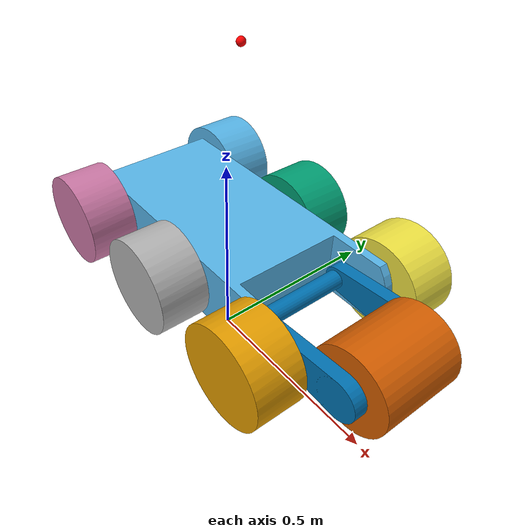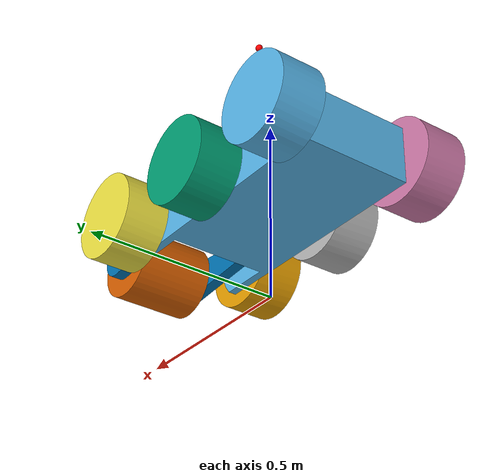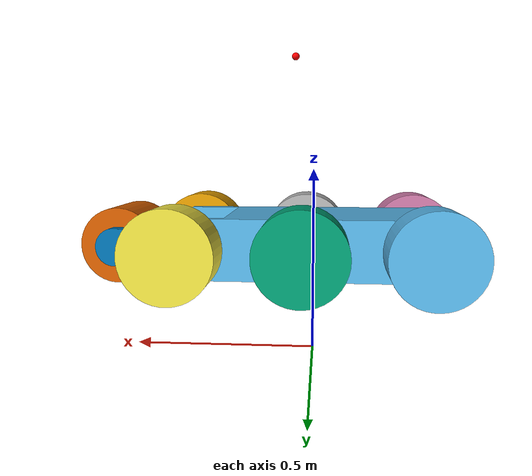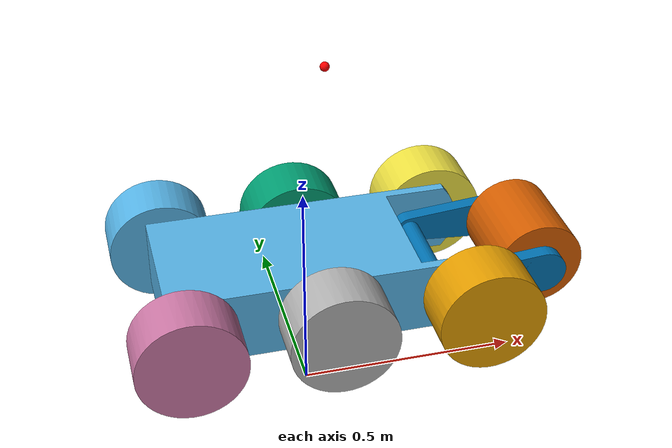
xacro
<?xml version="1.0"?>
<robot xmlns:xacro="http://ros.org/wiki/xacro" name="fire_robot">

  <!-- XACRO constants -->
  <xacro:arg name="include_inertial" default="true"/>
  <xacro:property name="mesh_dir" value="$(find fire_description)/meshes"/>

  <!-- Base footprint (dummy) -->
  <link name="base_footprint"/>
  <joint name="base_footprint_joint" type="fixed">
    <parent link="base_footprint"/>
    <child link="base_link"/>
    <origin xyz="0 0 0.3" rpy="0 0 0"/>
  </joint>

  <!-- base_link -->
  <link name="base_link">
    <inertial>
      <origin xyz="0 0 0" rpy="0 0 0"/>
      <mass value="6.0"/>
      <inertia ixx="0.02" ixy="0" ixz="0" iyy="0.02" iyz="0" izz="0.02"/>
    </inertial>
    <visual>
      <origin xyz="0 0 0" rpy="0 0 0"/>
      <geometry>
        <mesh filename="file://${mesh_dir}/base_link.obj" scale="0.01 0.01 0.01"/>
      </geometry>
    </visual>
    <collision>
      <origin xyz="0 0 0" rpy="0 0 0"/>
      <geometry>
        <mesh filename="file://${mesh_dir}/base_link.obj" scale="0.01 0.01 0.01"/>
      </geometry>
    </collision>
  </link>

  <!-- IMU frame -->
  <link name="imu_link"/>
  <joint name="imu_joint" type="fixed">
    <parent link="base_link"/>
    <child link="imu_link"/>
    <origin xyz="-0.10 0.0 0.0" rpy="0 0 0"/>
  </joint>

  <!-- Gazebo Sim sensors (Fortress): use model-scoped topics to avoid collisions -->
  <gazebo reference="imu_link">
    <!-- IMU -->
    <sensor name="imu_sensor" type="imu">
      <topic>~/imu</topic>
      <update_rate>100</update_rate>
      <plugin filename="libignition-gazebo-imu-system.so"
                name="ignition::gazebo::systems::Imu"
                />
      <gz_frame_id>imu_link</gz_frame_id>
      <imu>
        <angular_velocity>
          <x><noise type="gaussian"><mean>0</mean><stddev>0.002</stddev></noise></x>
          <y><noise type="gaussian"><mean>0</mean><stddev>0.002</stddev></noise></y>
          <z><noise type="gaussian"><mean>0</mean><stddev>0.002</stddev></noise></z>
        </angular_velocity>
        <linear_acceleration>
          <x><noise type="gaussian"><mean>0</mean><stddev>0.1</stddev></noise></x>
          <y><noise type="gaussian"><mean>0</mean><stddev>0.1</stddev></noise></y>
          <z><noise type="gaussian"><mean>0</mean><stddev>0.1</stddev></noise></z>
        </linear_acceleration>
      </imu>
    </sensor>

    <!-- Magnetometer -->
    <sensor name="mag_sensor" type="magnetometer">
      <topic>~/mag</topic>
      <update_rate>50</update_rate>
      <plugin filename="libignition-gazebo-magnetometer-system.so"
                name="ignition::gazebo::systems::Magnetometer"
                />
      <gz_frame_id>imu_link</gz_frame_id>
      <magnetometer>
        <x><noise type="gaussian"><mean>0</mean><stddev>0.0005</stddev></noise></x>
        <y><noise type="gaussian"><mean>0</mean><stddev>0.0005</stddev></noise></y>
        <z><noise type="gaussian"><mean>0</mean><stddev>0.0005</stddev></noise></z>
      </magnetometer>
    </sensor>
  </gazebo>

  <!-- camera follow (helper) -->
  <link name="cam_follow_link">
    <inertial>
      <mass value="0.0001"/>
      <inertia ixx="1e-6" ixy="0" ixz="0" iyy="1e-6" iyz="0" izz="1e-6"/>
    </inertial>
    <visual>
      <geometry>
        <sphere radius="0.01"/>
      </geometry>
      <!-- URDF needs a material name attribute -->
      <material name="cam_follow_red"><color rgba="1 0 0 1"/></material>
    </visual>
    <collision>
      <geometry>
        <sphere radius="0.001"/>
      </geometry>
    </collision>
  </link>
  <joint name="cam_follow_joint" type="revolute">
    <parent link="base_link"/>
    <child link="cam_follow_link"/>
    <origin xyz="0.05 0 0.5" rpy="0 0 3.1415926535"/>
    <axis xyz="1 0 0"/>
    <limit lower="0.0" upper="0.0" effort="0.1" velocity="0.1"/>
    <dynamics damping="1.0"/>
  </joint>

  <!-- ARM -->
  <joint name="arm_joint" type="revolute">
    <origin xyz="0.2765 0 0" rpy="0 0 0"/>
    <parent link="base_link"/>
    <child link="arm"/>
    <axis xyz="0 1 0"/>
    <limit velocity="1.0" lower="-0.5" upper="0.5" effort="50"/>
    <dynamics damping="0.05" friction="0.2"/>
  </joint>
  <link name="arm">
    <inertial>
      <origin xyz="0 0 0" rpy="0 0 0"/>
      <mass value="0.4"/>
      <inertia ixx="0.001" ixy="0" ixz="0" iyy="0.001" iyz="0" izz="0.001"/>
    </inertial>
    <visual>
      <origin xyz="0 0 0" rpy="0 0 0"/>
      <geometry>
        <mesh filename="file://${mesh_dir}/arm.obj" scale="0.01 0.01 0.01"/>
      </geometry>
    </visual>
    <collision>
      <origin xyz="0 0 0" rpy="0 0 0"/>
      <geometry>
        <mesh filename="file://${mesh_dir}/arm.obj" scale="0.01 0.01 0.01"/>
      </geometry>
    </collision>
  </link>

  <!-- BLADE -->
  <joint name="blade_joint" type="continuous">
    <origin xyz="0.240 0 0" rpy="0 0 0"/>
    <parent link="arm"/>
    <child link="blade"/>
    <axis xyz="0 1 0"/>
    <limit velocity="200.0" effort="5.0"/>
    <dynamics damping="0.01" friction="0.05"/>
  </joint>
  <link name="blade">
    <inertial>
      <origin xyz="0 0 0" rpy="0 0 0"/>
      <mass value="2.7"/>
      <inertia ixx="0.005" ixy="0" ixz="0" iyy="0.005" iyz="0" izz="0.005"/>
    </inertial>
    <visual>
      <origin xyz="0 0 0" rpy="0 0 0"/>
      <geometry>
        <mesh filename="file://${mesh_dir}/blade.obj" scale="0.01 0.01 0.01"/>
      </geometry>
    </visual>
    <collision>
      <origin xyz="0 0 0" rpy="0 0 0"/>
      <geometry>
        <mesh filename="file://${mesh_dir}/blade.obj" scale="0.01 0.01 0.01"/>
      </geometry>
    </collision>
  </link>

  <!-- LEFT WHEELS -->
  <joint name="left_wheel_1_joint" type="continuous">
    <origin xyz="-0.2935 -0.15743 0" rpy="0 0 0"/>
    <parent link="base_link"/><child link="left_wheel1"/>
    <axis xyz="0 1 0"/><dynamics damping="0.05" friction="0.0"/>
    <limit velocity="20.0" effort="50.0"/>
  </joint>
  <link name="left_wheel1">
    <inertial><origin xyz="0 0 0" rpy="0 0 0"/>
      <mass value="2.5"/><inertia ixx="0.0068" ixy="0" ixz="0" iyy="0.0068" iyz="0" izz="0.0125"/></inertial>
    <visual>
      <origin xyz="0 0 0" rpy="0 0 0"/>
      <geometry><mesh filename="file://${mesh_dir}/left_wheel.obj" scale="0.01 0.01 0.01"/></geometry>
    </visual>
    <collision>
      <origin xyz="0 0 0" rpy="0 0 0"/>
      <geometry><mesh filename="file://${mesh_dir}/left_wheel.obj" scale="0.01 0.01 0.01"/></geometry>
    </collision>
  </link>

  <joint name="left_wheel_2_joint" type="continuous">
    <origin xyz="0.025 -0.15743 0" rpy="0 0 0"/>
    <parent link="base_link"/><child link="left_wheel2"/>
    <axis xyz="0 1 0"/><dynamics damping="0.05" friction="0.0"/>
    <limit velocity="20.0" effort="50.0"/>
  </joint>
  <link name="left_wheel2">
    <inertial><origin xyz="0 0 0" rpy="0 0 0"/>
      <mass value="2.5"/><inertia ixx="0.0068" ixy="0" ixz="0" iyy="0.0068" iyz="0" izz="0.0125"/></inertial>
    <visual>
      <origin xyz="0 0 0" rpy="0 0 0"/>
      <geometry><mesh filename="file://${mesh_dir}/left_wheel.obj" scale="0.01 0.01 0.01"/></geometry>
    </visual>
    <collision>
      <origin xyz="0 0 0" rpy="0 0 0"/>
      <geometry><mesh filename="file://${mesh_dir}/left_wheel.obj" scale="0.01 0.01 0.01"/></geometry>
    </collision>
  </link>

  <joint name="left_wheel_3_joint" type="continuous">
    <origin xyz="0.3455 -0.15743 0" rpy="0 0 0"/>
    <parent link="base_link"/><child link="left_wheel3"/>
    <axis xyz="0 1 0"/><dynamics damping="0.05" friction="0.0"/>
    <limit velocity="20.0" effort="50.0"/>
  </joint>
  <link name="left_wheel3">
    <inertial><origin xyz="0 0 0" rpy="0 0 0"/>
      <mass value="2.5"/><inertia ixx="0.0068" ixy="0" ixz="0" iyy="0.0068" iyz="0" izz="0.0125"/></inertial>
    <visual>
      <origin xyz="0 0 0" rpy="0 0 0"/>
      <geometry><mesh filename="file://${mesh_dir}/left_wheel.obj" scale="0.01 0.01 0.01"/></geometry>
    </visual>
    <collision>
      <origin xyz="0 0 0" rpy="0 0 0"/>
      <geometry><mesh filename="file://${mesh_dir}/left_wheel.obj" scale="0.01 0.01 0.01"/></geometry>
    </collision>
  </link>

  <!-- RIGHT WHEELS -->
  <joint name="right_wheel_1_joint" type="continuous">
    <origin xyz="-0.2935 0.15743 0" rpy="0 0 0"/>
    <parent link="base_link"/><child link="right_wheel1"/>
    <axis xyz="0 1 0"/><dynamics damping="0.05" friction="0.0"/>
    <limit velocity="20.0" effort="50.0"/>
  </joint>
  <link name="right_wheel1">
    <inertial><origin xyz="0 0 0" rpy="0 0 0"/>
      <mass value="2.5"/><inertia ixx="0.0068" ixy="0" ixz="0" iyy="0.0068" iyz="0" izz="0.0125"/></inertial>
    <visual>
      <origin xyz="0 0 0" rpy="0 0 0"/>
      <geometry><mesh filename="file://${mesh_dir}/right_wheel.obj" scale="0.01 0.01 0.01"/></geometry>
    </visual>
    <collision>
      <origin xyz="0 0 0" rpy="0 0 0"/>
      <geometry><mesh filename="file://${mesh_dir}/right_wheel.obj" scale="0.01 0.01 0.01"/></geometry>
    </collision>
  </link>

  <joint name="right_wheel_2_joint" type="continuous">
    <origin xyz="0.025 0.15743 0" rpy="0 0 0"/>
    <parent link="base_link"/><child link="right_wheel2"/>
    <axis xyz="0 1 0"/><dynamics damping="0.05" friction="0.0"/>
    <limit velocity="20.0" effort="50.0"/>
  </joint>
  <link name="right_wheel2">
    <inertial><origin xyz="0 0 0" rpy="0 0 0"/>
      <mass value="2.5"/><inertia ixx="0.0068" ixy="0" ixz="0" iyy="0.0068" iyz="0" izz="0.0125"/></inertial>
    <visual>
      <origin xyz="0 0 0" rpy="0 0 0"/>
      <geometry><mesh filename="file://${mesh_dir}/right_wheel.obj" scale="0.01 0.01 0.01"/></geometry>
    </visual>
    <collision>
      <origin xyz="0 0 0" rpy="0 0 0"/>
      <geometry><mesh filename="file://${mesh_dir}/right_wheel.obj" scale="0.01 0.01 0.01"/></geometry>
    </collision>
  </link>

  <joint name="right_wheel_3_joint" type="continuous">
    <origin xyz="0.3455 0.15743 0" rpy="0 0 0"/>
    <parent link="base_link"/><child link="right_wheel3"/>
    <axis xyz="0 1 0"/><dynamics damping="0.05" friction="0.0"/>
    <limit velocity="20.0" effort="50.0"/>
  </joint>
  <link name="right_wheel3">
    <inertial><origin xyz="0 0 0" rpy="0 0 0"/>
      <mass value="2.5"/><inertia ixx="0.0068" ixy="0" ixz="0" iyy="0.0068" iyz="0" izz="0.0125"/></inertial>
    <visual>
      <origin xyz="0 0 0" rpy="0 0 0"/>
      <geometry><mesh filename="file://${mesh_dir}/right_wheel.obj" scale="0.01 0.01 0.01"/></geometry>
    </visual>
    <collision>
      <origin xyz="0 0 0" rpy="0 0 0"/>
      <geometry><mesh filename="file://${mesh_dir}/right_wheel.obj" scale="0.01 0.01 0.01"/></geometry>
    </collision>
  </link>

  <!-- ros2_control (Gazebo Sim) -->
  <ros2_control name="RobotController" type="system">
    <hardware>
      <plugin>gz_ros2_control/GazeboSimSystem</plugin>
    </hardware>

    <joint name="arm_joint">
      <command_interface name="position"/>
      <param name="min">-0.524</param>
      <state_interface name="position"/>
      <state_interface name="velocity"/>
      <state_interface name="effort"/>
    </joint>

    <joint name="blade_joint">
      <command_interface name="velocity"/>
      <state_interface name="position"/>
      <state_interface name="velocity"/>
      <state_interface name="effort"/>
    </joint>

    <!-- cam_follow_joint 추가 -->
    <joint name="cam_follow_joint">
      <state_interface name="position"/>
      <state_interface name="velocity"/>
    </joint>

    <joint name="left_wheel_1_joint"><command_interface name="velocity"/>
      <state_interface name="position"/><state_interface name="velocity"/></joint>
    <joint name="left_wheel_2_joint"><command_interface name="velocity"/>
      <state_interface name="position"/><state_interface name="velocity"/></joint>
    <joint name="left_wheel_3_joint"><command_interface name="velocity"/>
      <state_interface name="position"/><state_interface name="velocity"/></joint>

    <joint name="right_wheel_1_joint"><command_interface name="velocity"/>
      <state_interface name="position"/><state_interface name="velocity"/></joint>
    <joint name="right_wheel_2_joint"><command_interface name="velocity"/>
      <state_interface name="position"/><state_interface name="velocity"/></joint>
    <joint name="right_wheel_3_joint"><command_interface name="velocity"/>
      <state_interface name="position"/><state_interface name="velocity"/></joint>
  </ros2_control>

  <!-- ros2_control plugin (Gazebo Sim) -->
  <gazebo>
    <plugin filename="libgz_ros2_control-system.so" name="gz_ros2_control::GazeboSimROS2ControlPlugin">
      <parameters>$(find fire_bringup)/config/controller.yaml</parameters>
    </plugin>
  </gazebo>
</robot>
